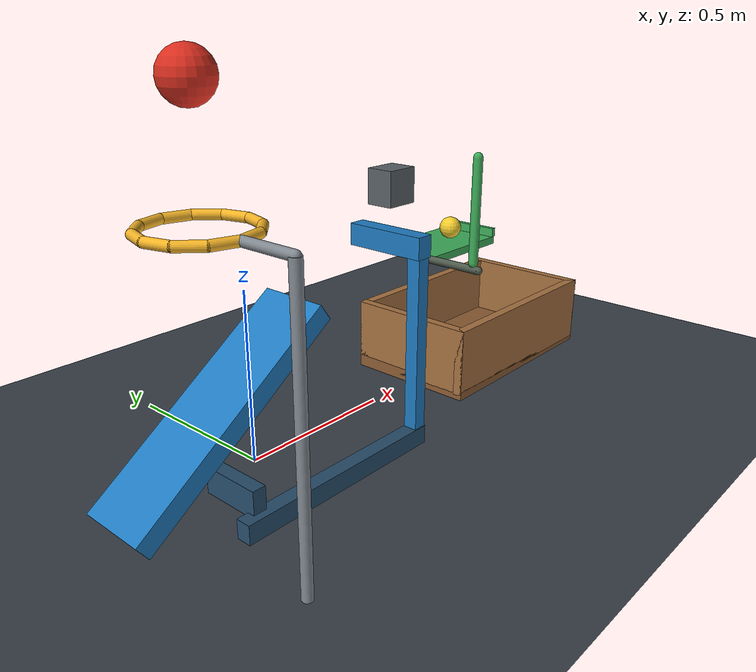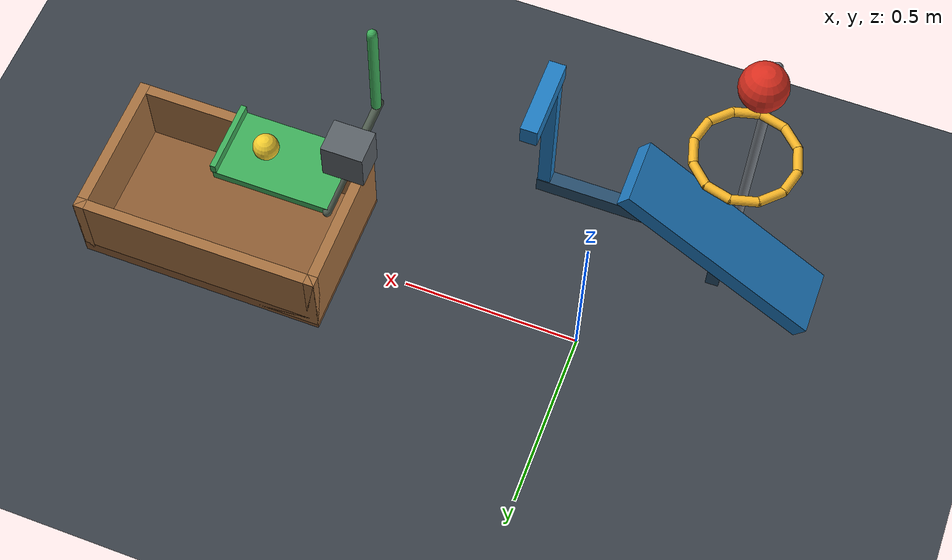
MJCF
<mujoco model="ball_cart_flap_release">
  <compiler angle="degree" autolimits="true"/>
  <option timestep="0.002" gravity="0 0 -9.81" integrator="implicitfast" solver="Newton" iterations="80" tolerance="1e-10" cone="elliptic"/>
  <size njmax="1000" nconmax="300"/>

  <visual>
    <headlight ambient="0.45 0.45 0.45" diffuse="0.7 0.7 0.7" specular="0.2 0.2 0.2"/>
    <global azimuth="135" elevation="-22"/>
  </visual>

  <worldbody>
    <light name="overhead" pos="0 -1 3" dir="0 0 -1"/>
    <camera name="overview" pos="2.4 -3.4 2.1" xyaxes="0.83 0.56 0 -0.23 0.34 0.91"/>

    <geom name="floor" type="plane" size="4 4 0.1" rgba="0.22 0.25 0.28 1" condim="6" friction="1 0.01 0.01" solref="0.006 1" solimp="0.95 0.99 0.001"/>

    <!-- The hoop surrounds the vertical drop path without touching ball1. -->
    <body name="hoop">
      <geom name="hoop_ring_01" type="capsule" fromto="-0.170000 -0.240000 0.760 -0.187417 -0.175000 0.760" size="0.012" rgba="0.95 0.7 0.15 1"/>
      <geom name="hoop_ring_02" type="capsule" fromto="-0.187417 -0.175000 0.760 -0.235000 -0.127417 0.760" size="0.012" rgba="0.95 0.7 0.15 1"/>
      <geom name="hoop_ring_03" type="capsule" fromto="-0.235000 -0.127417 0.760 -0.300000 -0.110000 0.760" size="0.012" rgba="0.95 0.7 0.15 1"/>
      <geom name="hoop_ring_04" type="capsule" fromto="-0.300000 -0.110000 0.760 -0.365000 -0.127417 0.760" size="0.012" rgba="0.95 0.7 0.15 1"/>
      <geom name="hoop_ring_05" type="capsule" fromto="-0.365000 -0.127417 0.760 -0.412583 -0.175000 0.760" size="0.012" rgba="0.95 0.7 0.15 1"/>
      <geom name="hoop_ring_06" type="capsule" fromto="-0.412583 -0.175000 0.760 -0.430000 -0.240000 0.760" size="0.012" rgba="0.95 0.7 0.15 1"/>
      <geom name="hoop_ring_07" type="capsule" fromto="-0.430000 -0.240000 0.760 -0.412583 -0.305000 0.760" size="0.012" rgba="0.95 0.7 0.15 1"/>
      <geom name="hoop_ring_08" type="capsule" fromto="-0.412583 -0.305000 0.760 -0.365000 -0.352583 0.760" size="0.012" rgba="0.95 0.7 0.15 1"/>
      <geom name="hoop_ring_09" type="capsule" fromto="-0.365000 -0.352583 0.760 -0.300000 -0.370000 0.760" size="0.012" rgba="0.95 0.7 0.15 1"/>
      <geom name="hoop_ring_10" type="capsule" fromto="-0.300000 -0.370000 0.760 -0.235000 -0.352583 0.760" size="0.012" rgba="0.95 0.7 0.15 1"/>
      <geom name="hoop_ring_11" type="capsule" fromto="-0.235000 -0.352583 0.760 -0.187417 -0.305000 0.760" size="0.012" rgba="0.95 0.7 0.15 1"/>
      <geom name="hoop_ring_12" type="capsule" fromto="-0.187417 -0.305000 0.760 -0.170000 -0.240000 0.760" size="0.012" rgba="0.95 0.7 0.15 1"/>
      <geom name="hoop_post" type="cylinder" pos="-0.3 -0.52 0.38" size="0.014 0.38" rgba="0.5 0.53 0.56 1"/>
      <geom name="hoop_bracket" type="capsule" fromto="-0.3 -0.52 0.76 -0.3 -0.37 0.76" size="0.012" rgba="0.5 0.53 0.56 1"/>
    </body>

    <!-- Initial center height gives a 0.600 m vertical fall to the inclined surface. -->
    <body name="ball1" pos="-0.3 -0.24 1.053765">
      <freejoint name="ball1_free"/>
      <geom name="ball1_sphere" type="sphere" size="0.06" mass="2.5" rgba="0.85 0.18 0.12 1" condim="6" friction="0.03 0.001 0.001" solref="0.006 1" solimp="0.95 0.99 0.001"/>
    </body>

    <!-- The low-friction incline converts the falling ball's impulse into +x motion. -->
    <body name="cart">
      <joint name="cart_slide" type="slide" axis="1 0 0" range="0 0.64" damping="0.18" frictionloss="0.035" armature="0.005" solreflimit="0.006 1"/>
      <geom name="cart_slope" type="box" pos="-0.3 -0.24 0.35" euler="0 -35 0" size="0.32 0.09 0.025" mass="0.35" rgba="0.12 0.48 0.75 1" friction="0.03 0.001 0.001" solref="0.006 1" solimp="0.95 0.99 0.001"/>
      <geom name="cart_frame" type="box" pos="-0.05 -0.38 0.13" size="0.30 0.02 0.025" mass="0.12" rgba="0.15 0.3 0.42 1"/>
      <geom name="cart_crossmember" type="box" pos="-0.3 -0.3 0.18" size="0.018 0.08 0.035" mass="0.03" rgba="0.15 0.3 0.42 1"/>
      <geom name="cart_pusher_upright" type="box" pos="0.23 -0.38 0.39" size="0.018 0.018 0.26" mass="0.04" rgba="0.12 0.48 0.75 1"/>
      <geom name="cart_pusher" type="box" pos="0.23 -0.29 0.64" size="0.023 0.11 0.028" mass="0.03" rgba="0.12 0.48 0.75 1" friction="0.15 0.005 0.001" solref="0.006 1" solimp="0.95 0.99 0.001"/>
    </body>

    <!-- Balanced at the upper stop; the elevated counterweight drives it downward after the cart's nudge. -->
    <body name="flap" pos="0.67 0 0.45">
      <joint name="flap_hinge" type="hinge" axis="0 -1 0" range="-80 0" damping="0.045" frictionloss="0.02" armature="0.0002" solreflimit="0.004 1" solimplimit="0.98 0.999 0.001"/>
      <geom name="flap_tray" type="box" pos="0.16 0 0" size="0.16 0.10 0.012" mass="0.10" rgba="0.24 0.68 0.35 1" condim="6" friction="0.45 0.005 0.001" solref="0.006 1" solimp="0.95 0.99 0.001"/>
      <geom name="flap_release_lip" type="box" pos="0.3175 0 0.026" size="0.0075 0.10 0.014" mass="0.015" rgba="0.24 0.68 0.35 1" condim="6" friction="0.35 0.005 0.001" solref="0.006 1" solimp="0.95 0.99 0.001"/>
      <geom name="flap_hinge_bar" type="capsule" fromto="0 -0.26 0 0 0.10 0" size="0.012" mass="0.025" rgba="0.3 0.35 0.3 1"/>
      <geom name="flap_trigger" type="capsule" fromto="0 -0.24 0.02 0 -0.24 0.33" size="0.014" mass="0.06" rgba="0.24 0.68 0.35 1" friction="0.15 0.005 0.001" solref="0.006 1" solimp="0.95 0.99 0.001"/>
      <geom name="flap_counterweight" type="box" pos="-0.046953125 0.04 0.22" size="0.055 0.045 0.055" mass="0.8" rgba="0.35 0.38 0.4 1"/>
    </body>

    <body name="ball2" pos="0.88 0 0.497">
      <freejoint name="ball2_free"/>
      <geom name="ball2_sphere" type="sphere" size="0.035" mass="0.08" rgba="0.95 0.8 0.18 1" condim="6" friction="0.6 0.01 0.002" solref="0.006 1" solimp="0.95 0.99 0.001"/>
    </body>

    <!-- The shallow retaining lip releases ball2 near the flap's lower stop. -->
    <body name="box">
      <geom name="box_bottom" type="box" pos="1.0275 0 0.025" size="0.3525 0.215 0.02" rgba="0.55 0.36 0.2 1" condim="6" friction="0.8 0.01 0.02" solref="0.008 1" solimp="0.95 0.99 0.001"/>
      <geom name="box_left" type="box" pos="0.69 0 0.13" size="0.015 0.215 0.11" rgba="0.65 0.44 0.25 1" condim="6" friction="0.8 0.01 0.02" solref="0.008 1"/>
      <geom name="box_right" type="box" pos="1.365 0 0.13" size="0.015 0.215 0.11" rgba="0.65 0.44 0.25 1" condim="6" friction="0.8 0.01 0.02" solref="0.008 1"/>
      <geom name="box_front" type="box" pos="1.0275 -0.20 0.13" size="0.3525 0.015 0.11" rgba="0.65 0.44 0.25 1" condim="6" friction="0.8 0.01 0.02" solref="0.008 1"/>
      <geom name="box_back" type="box" pos="1.0275 0.20 0.13" size="0.3525 0.015 0.11" rgba="0.65 0.44 0.25 1" condim="6" friction="0.8 0.01 0.02" solref="0.008 1"/>
    </body>
  </worldbody>

  <keyframe>
    <key name="start" qpos="-0.3 -0.24 1.053765 1 0 0 0 0 0 0.88 0 0.497 1 0 0 0"/>
  </keyframe>
</mujoco>
